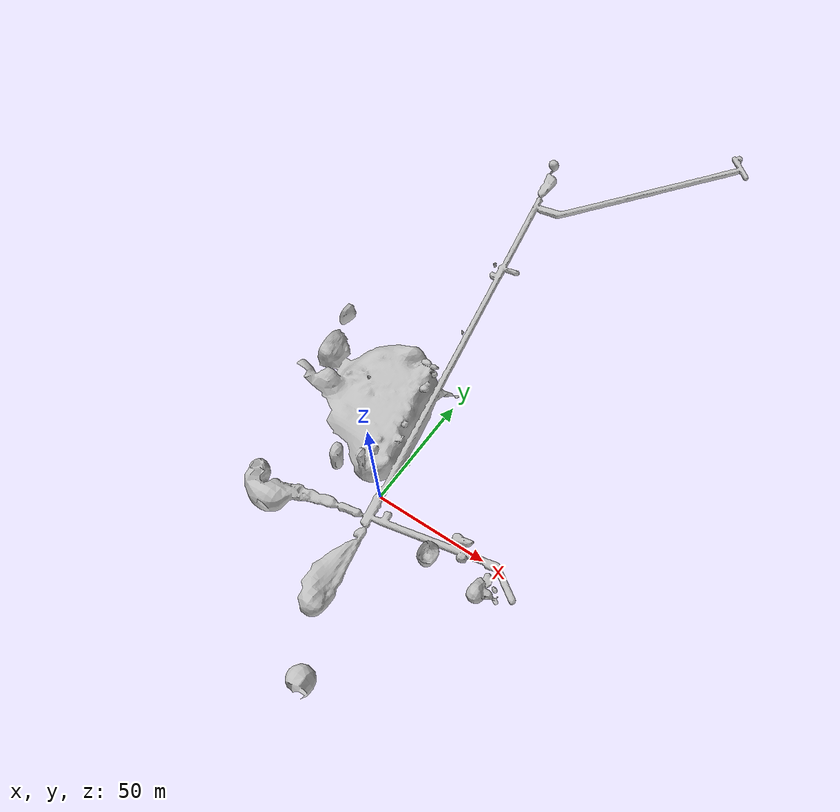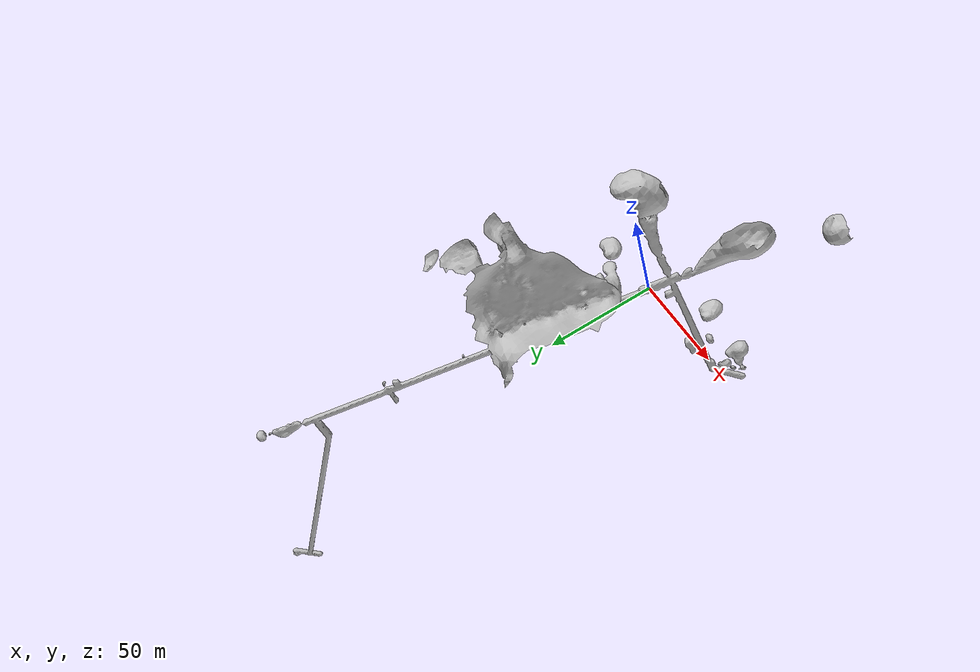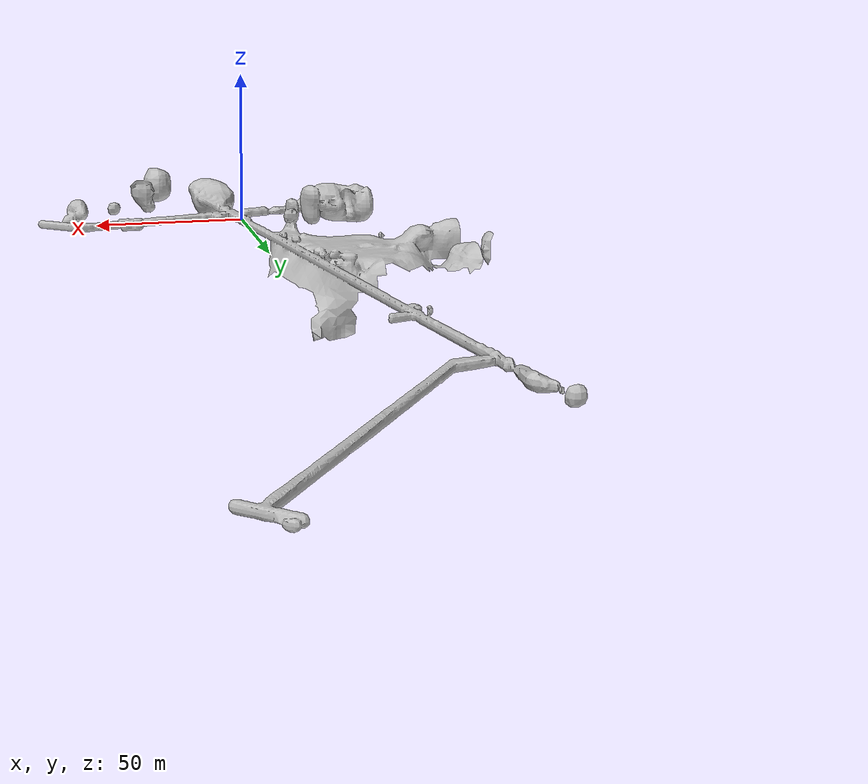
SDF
<?xml version="1.0"?>
<sdf version="1.6">
  <model name="underground_corridor">
    <static>true</static>
    <link name="base_link">
      <collision name="collision">
        <pose>0 0 0 0 0 0</pose>
        <geometry>
          <mesh>
            <!-- STL is the most reliable Gazebo import path for this workspace. -->
            <uri>meshes/underground_corridor.stl</uri>
            <scale>1.0 1.0 1.0</scale>
          </mesh>
        </geometry>
        <max_contacts>10</max_contacts>
        <surface>
          <contact>
            <ode/>
          </contact>
          <bounce/>
          <friction>
            <torsional>
              <ode/>
            </torsional>
            <ode/>
          </friction>
        </surface>
      </collision>

      <visual name="visual">
        <pose>0 0 0 0 0 0</pose>
        <geometry>
          <mesh>
            <!-- Use a double-sided visual mesh so tunnel interiors stay visible in Gazebo. -->
            <uri>meshes/underground_corridor_visual.stl</uri>
            <scale>1.0 1.0 1.0</scale>
          </mesh>
        </geometry>
        <material>
          <ambient>0.75 0.75 0.75 1.0</ambient>
          <diffuse>0.75 0.75 0.75 1.0</diffuse>
          <specular>0.05 0.05 0.05 1.0</specular>
        </material>
      </visual>
    </link>
  </model>
</sdf>
